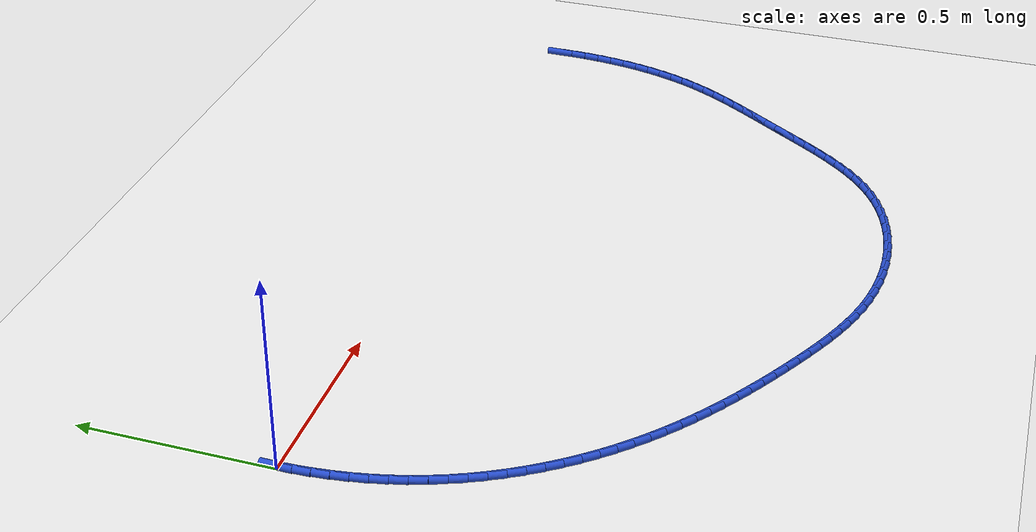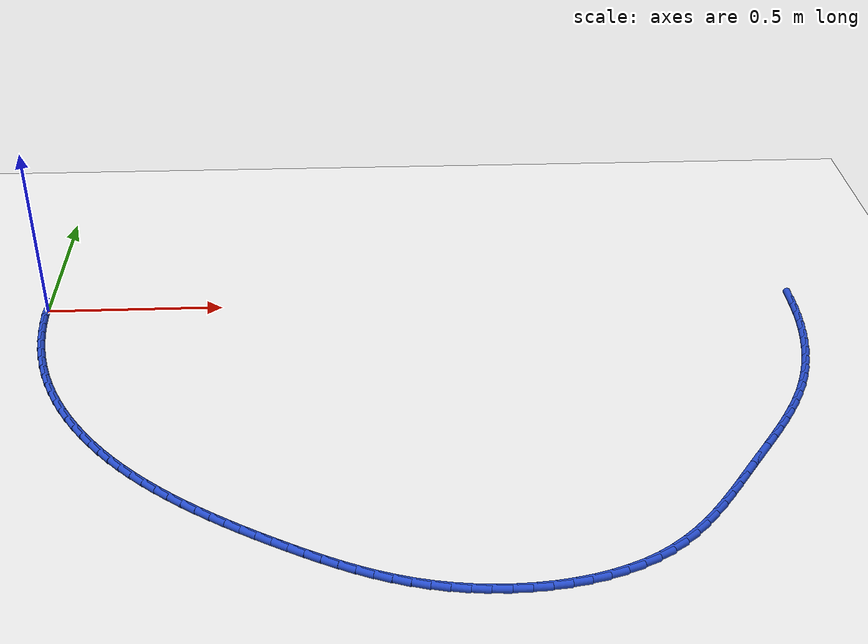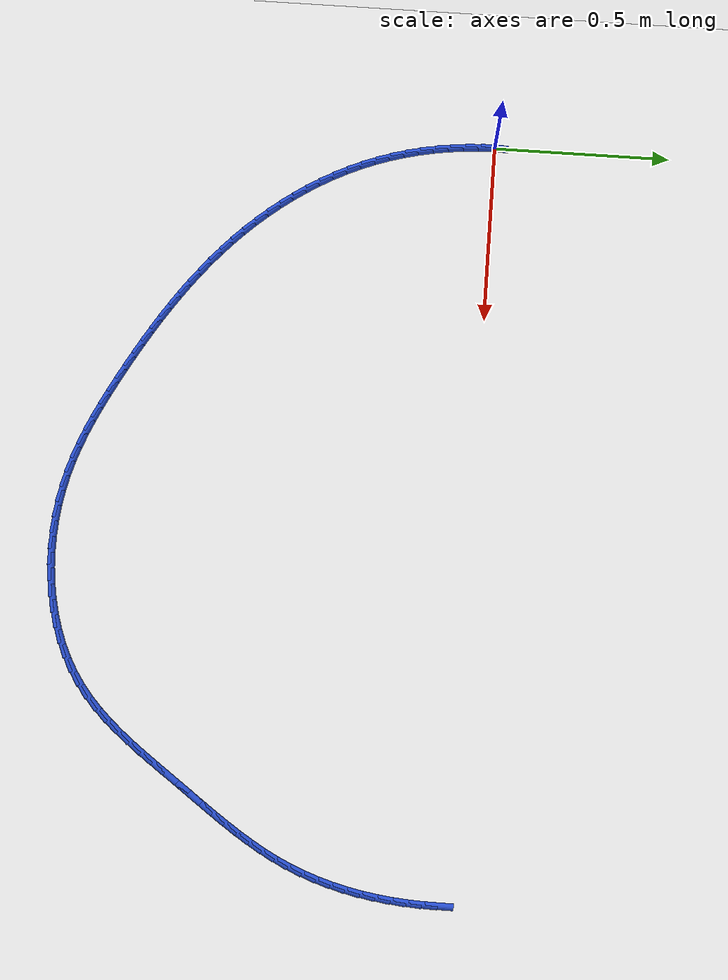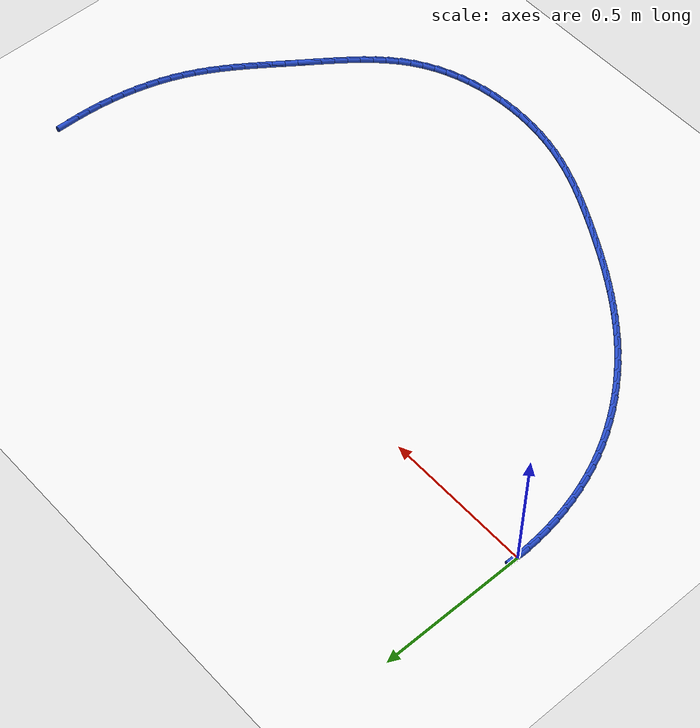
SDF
<sdf version="1.6">
 <world name="default">
  <model name="ground_plane">
   <static>1</static>
   <link name="link">
    <collision name="collision">
     <geometry><plane><normal>0 0 1</normal><size>100 100</size></plane></geometry>
     <surface><friction><ode><mu>100</mu><mu2>50</mu2></ode></friction></surface>
    </collision>
    <visual name="visual">
     <cast_shadows>0</cast_shadows>
     <geometry><plane><normal>0 0 1</normal><size>100 100</size></plane></geometry>
     <material>
      <script><uri>file://media/materials/scripts/gazebo.material</uri><name>Gazebo/WhiteGlow</name></script>
     </material>
    </visual>
   </link>
  </model>
  <model name="line">
   <link name="link_0">
    <pose>-1.5612511283791264e-17 -1.3877787807814457e-17 0.01 0 1.57 1.5550382018459732</pose>
    <collision name="collision">
     <geometry><cylinder><radius>0.01</radius><length>0.08</length></cylinder></geometry>
    </collision>
    <visual name="visual">
     <material>
      <script><name>Gazebo/Blue</name><uri>file://media/materials/scripts/gazebo.material</uri></script>
     </material>
     <geometry><cylinder><radius>0.01</radius><length>0.08</length></cylinder></geometry>
    </visual>
   </link>
   <link name="link_80">
    <pose>2.1539422164387503 -0.02940899779110692 0.01 0 1.57 1.5565943990553839</pose>
    <collision name="collision">
     <geometry><cylinder><radius>0.01</radius><length>0.08</length></cylinder></geometry>
    </collision>
    <visual name="visual">
     <material>
      <script><name>Gazebo/Blue</name><uri>file://media/materials/scripts/gazebo.material</uri></script>
     </material>
     <geometry><cylinder><radius>0.01</radius><length>0.08</length></cylinder></geometry>
    </visual>
   </link>
   <link name="link_81">
    <pose>2.153316064161116 -0.07349527898775675 0.01 0 1.57 1.5212279559447406</pose>
    <collision name="collision">
     <geometry><cylinder><radius>0.01</radius><length>0.08</length></cylinder></geometry>
    </collision>
    <visual name="visual">
     <material>
      <script><name>Gazebo/Blue</name><uri>file://media/materials/scripts/gazebo.material</uri></script>
     </material>
     <geometry><cylinder><radius>0.01</radius><length>0.08</length></cylinder></geometry>
    </visual>
   </link>
   <link name="link_82">
    <pose>2.1511389975417945 -0.11737978145065128 0.01 0 1.57 1.4844455310675044</pose>
    <collision name="collision">
     <geometry><cylinder><radius>0.01</radius><length>0.08</length></cylinder></geometry>
    </collision>
    <visual name="visual">
     <material>
      <script><name>Gazebo/Blue</name><uri>file://media/materials/scripts/gazebo.material</uri></script>
     </material>
     <geometry><cylinder><radius>0.01</radius><length>0.08</length></cylinder></geometry>
    </visual>
   </link>
   <link name="link_83">
    <pose>2.1473648537054677 -0.16097820523065665 0.01 0 1.57 1.446125235773089</pose>
    <collision name="collision">
     <geometry><cylinder><radius>0.01</radius><length>0.08</length></cylinder></geometry>
    </collision>
    <visual name="visual">
     <material>
      <script><name>Gazebo/Blue</name><uri>file://media/materials/scripts/gazebo.material</uri></script>
     </material>
     <geometry><cylinder><radius>0.01</radius><length>0.08</length></cylinder></geometry>
    </visual>
   </link>
   <link name="link_84">
    <pose>2.1419474697768175 -0.20420625037864135 0.01 0 1.57 1.406150575232681</pose>
    <collision name="collision">
     <geometry><cylinder><radius>0.01</radius><length>0.08</length></cylinder></geometry>
    </collision>
    <visual name="visual">
     <material>
      <script><name>Gazebo/Blue</name><uri>file://media/materials/scripts/gazebo.material</uri></script>
     </material>
     <geometry><cylinder><radius>0.01</radius><length>0.08</length></cylinder></geometry>
    </visual>
   </link>
   <link name="link_85">
    <pose>2.134840682880527 -0.24697961694547307 0.01 0 1.57 1.3644135216382514</pose>
    <collision name="collision">
     <geometry><cylinder><radius>0.01</radius><length>0.08</length></cylinder></geometry>
    </collision>
    <visual name="visual">
     <material>
      <script><name>Gazebo/Blue</name><uri>file://media/materials/scripts/gazebo.material</uri></script>
     </material>
     <geometry><cylinder><radius>0.01</radius><length>0.08</length></cylinder></geometry>
    </visual>
   </link>
   <link name="link_86">
    <pose>2.1259983301412784 -0.28921400498201955 0.01 0 1.57 1.3208184187432412</pose>
    <collision name="collision">
     <geometry><cylinder><radius>0.01</radius><length>0.08</length></cylinder></geometry>
    </collision>
    <visual name="visual">
     <material>
      <script><name>Gazebo/Blue</name><uri>file://media/materials/scripts/gazebo.material</uri></script>
     </material>
     <geometry><cylinder><radius>0.01</radius><length>0.08</length></cylinder></geometry>
    </visual>
   </link>
   <link name="link_87">
    <pose>2.115374248683754 -0.3308251145391491 0.01 0 1.57 1.2752867483530825</pose>
    <collision name="collision">
     <geometry><cylinder><radius>0.01</radius><length>0.08</length></cylinder></geometry>
    </collision>
    <visual name="visual">
     <material>
      <script><name>Gazebo/Blue</name><uri>file://media/materials/scripts/gazebo.material</uri></script>
     </material>
     <geometry><cylinder><radius>0.01</radius><length>0.08</length></cylinder></geometry>
    </visual>
   </link>
   <link name="link_88">
    <pose>2.1029222756326362 -0.3717286456677281 0.01 0 1.57 1.2277627186690123</pose>
    <collision name="collision">
     <geometry><cylinder><radius>0.01</radius><length>0.08</length></cylinder></geometry>
    </collision>
    <visual name="visual">
     <material>
      <script><name>Gazebo/Blue</name><uri>file://media/materials/scripts/gazebo.material</uri></script>
     </material>
     <geometry><cylinder><radius>0.01</radius><length>0.08</length></cylinder></geometry>
    </visual>
   </link>
   <link name="link_89">
    <pose>2.0885962481126077 -0.4118402984186248 0.01 0 1.57 1.178219529047844</pose>
    <collision name="collision">
     <geometry><cylinder><radius>0.01</radius><length>0.08</length></cylinder></geometry>
    </collision>
    <visual name="visual">
     <material>
      <script><name>Gazebo/Blue</name><uri>file://media/materials/scripts/gazebo.material</uri></script>
     </material>
     <geometry><cylinder><radius>0.01</radius><length>0.08</length></cylinder></geometry>
    </visual>
   </link>
   <link name="link_90">
    <pose>2.07235000324835 -0.45107577284270717 0.01 0 1.57 1.126972777378681</pose>
    <collision name="collision">
     <geometry><cylinder><radius>0.01</radius><length>0.08</length></cylinder></geometry>
    </collision>
    <visual name="visual">
     <material>
      <script><name>Gazebo/Blue</name><uri>file://media/materials/scripts/gazebo.material</uri></script>
     </material>
     <geometry><cylinder><radius>0.01</radius><length>0.08</length></cylinder></geometry>
    </visual>
   </link>
   <link name="link_91">
    <pose>2.054147837860722 -0.4893590505294075 0.01 0 1.57 1.0787356138030832</pose>
    <collision name="collision">
     <geometry><cylinder><radius>0.01</radius><length>0.08</length></cylinder></geometry>
    </collision>
    <visual name="visual">
     <material>
      <script><name>Gazebo/Blue</name><uri>file://media/materials/scripts/gazebo.material</uri></script>
     </material>
     <geometry><cylinder><radius>0.01</radius><length>0.08</length></cylinder></geometry>
    </visual>
   </link>
   <link name="link_92">
    <pose>2.0341110664331055 -0.5267384329151077 0.01 0 1.57 1.0372902091825713</pose>
    <collision name="collision">
     <geometry><cylinder><radius>0.01</radius><length>0.08</length></cylinder></geometry>
    </collision>
    <visual name="visual">
     <material>
      <script><name>Gazebo/Blue</name><uri>file://media/materials/scripts/gazebo.material</uri></script>
     </material>
     <geometry><cylinder><radius>0.01</radius><length>0.08</length></cylinder></geometry>
    </visual>
   </link>
   <link name="link_93">
    <pose>2.01248213712991 -0.563358129886504 0.01 0 1.57 1.0028394556459574</pose>
    <collision name="collision">
     <geometry><cylinder><radius>0.01</radius><length>0.08</length></cylinder></geometry>
    </collision>
    <visual name="visual">
     <material>
      <script><name>Gazebo/Blue</name><uri>file://media/materials/scripts/gazebo.material</uri></script>
     </material>
     <geometry><cylinder><radius>0.01</radius><length>0.08</length></cylinder></geometry>
    </visual>
   </link>
   <link name="link_94">
    <pose>1.9895066292175947 -0.599364830402532 0.01 0 1.57 0.9753718487942138</pose>
    <collision name="collision">
     <geometry><cylinder><radius>0.01</radius><length>0.08</length></cylinder></geometry>
    </collision>
    <visual name="visual">
     <material>
      <script><name>Gazebo/Blue</name><uri>file://media/materials/scripts/gazebo.material</uri></script>
     </material>
     <geometry><cylinder><radius>0.01</radius><length>0.08</length></cylinder></geometry>
    </visual>
   </link>
   <link name="link_95">
    <pose>1.9654301219626213 -0.6349052234221266 0.01 0 1.57 0.9548042492435083</pose>
    <collision name="collision">
     <geometry><cylinder><radius>0.01</radius><length>0.08</length></cylinder></geometry>
    </collision>
    <visual name="visual">
     <material>
      <script><name>Gazebo/Blue</name><uri>file://media/materials/scripts/gazebo.material</uri></script>
     </material>
     <geometry><cylinder><radius>0.01</radius><length>0.08</length></cylinder></geometry>
    </visual>
   </link>
   <link name="link_96">
    <pose>1.9404981946314488 -0.6701259979042231 0.01 0 1.57 0.9410223682051668</pose>
    <collision name="collision">
     <geometry><cylinder><radius>0.01</radius><length>0.08</length></cylinder></geometry>
    </collision>
    <visual name="visual">
     <material>
      <script><name>Gazebo/Blue</name><uri>file://media/materials/scripts/gazebo.material</uri></script>
     </material>
     <geometry><cylinder><radius>0.01</radius><length>0.08</length></cylinder></geometry>
    </visual>
   </link>
   <link name="link_97">
    <pose>1.9149564264905399 -0.705173842807756 0.01 0 1.57 0.9339097418655374</pose>
    <collision name="collision">
     <geometry><cylinder><radius>0.01</radius><length>0.08</length></cylinder></geometry>
    </collision>
    <visual name="visual">
     <material>
      <script><name>Gazebo/Blue</name><uri>file://media/materials/scripts/gazebo.material</uri></script>
     </material>
     <geometry><cylinder><radius>0.01</radius><length>0.08</length></cylinder></geometry>
    </visual>
   </link>
   <link name="link_98">
    <pose>1.8890503968063523 -0.7401954470916596 0.01 0 1.57 0.9333658339766633</pose>
    <collision name="collision">
     <geometry><cylinder><radius>0.01</radius><length>0.08</length></cylinder></geometry>
    </collision>
    <visual name="visual">
     <material>
      <script><name>Gazebo/Blue</name><uri>file://media/materials/scripts/gazebo.material</uri></script>
     </material>
     <geometry><cylinder><radius>0.01</radius><length>0.08</length></cylinder></geometry>
    </visual>
   </link>
   <link name="link_99">
    <pose>1.8630256848453486 -0.7753374997148699 0.01 0 1.57 0.938059829917183</pose>
    <collision name="collision">
     <geometry><cylinder><radius>0.01</radius><length>0.08</length></cylinder></geometry>
    </collision>
    <visual name="visual">
     <material>
      <script><name>Gazebo/Blue</name><uri>file://media/materials/scripts/gazebo.material</uri></script>
     </material>
     <geometry><cylinder><radius>0.01</radius><length>0.08</length></cylinder></geometry>
    </visual>
   </link>
   <link name="link_100">
    <pose>1.837087975409446 -0.8107080186126946 0.01 0 1.57 0.9380481611316303</pose>
    <collision name="collision">
     <geometry><cylinder><radius>0.01</radius><length>0.08</length></cylinder></geometry>
    </collision>
    <visual name="visual">
     <material>
      <script><name>Gazebo/Blue</name><uri>file://media/materials/scripts/gazebo.material</uri></script>
     </material>
     <geometry><cylinder><radius>0.01</radius><length>0.08</length></cylinder></geometry>
    </visual>
   </link>
   <link name="link_101">
    <pose>1.8111272746138838 -0.8461090239312467 0.01 0 1.57 0.9286147634766178</pose>
    <collision name="collision">
     <geometry><cylinder><radius>0.01</radius><length>0.08</length></cylinder></geometry>
    </collision>
    <visual name="visual">
     <material>
      <script><name>Gazebo/Blue</name><uri>file://media/materials/scripts/gazebo.material</uri></script>
     </material>
     <geometry><cylinder><radius>0.01</radius><length>0.08</length></cylinder></geometry>
    </visual>
   </link>
   <link name="link_102">
    <pose>1.784883516066078 -0.881197065572522 0.01 0 1.57 0.909602461871048</pose>
    <collision name="collision">
     <geometry><cylinder><radius>0.01</radius><length>0.08</length></cylinder></geometry>
    </collision>
    <visual name="visual">
     <material>
      <script><name>Gazebo/Blue</name><uri>file://media/materials/scripts/gazebo.material</uri></script>
     </material>
     <geometry><cylinder><radius>0.01</radius><length>0.08</length></cylinder></geometry>
    </visual>
   </link>
   <link name="link_103">
    <pose>1.7580957207706256 -0.9156278088224296 0.01 0 1.57 0.8807507866250059</pose>
    <collision name="collision">
     <geometry><cylinder><radius>0.01</radius><length>0.08</length></cylinder></geometry>
    </collision>
    <visual name="visual">
     <material>
      <script><name>Gazebo/Blue</name><uri>file://media/materials/scripts/gazebo.material</uri></script>
     </material>
     <geometry><cylinder><radius>0.01</radius><length>0.08</length></cylinder></geometry>
    </visual>
   </link>
   <link name="link_104">
    <pose>1.730502909732122 -0.949056918966878 0.01 0 1.57 0.8417137058338278</pose>
    <collision name="collision">
     <geometry><cylinder><radius>0.01</radius><length>0.08</length></cylinder></geometry>
    </collision>
    <visual name="visual">
     <material>
      <script><name>Gazebo/Blue</name><uri>file://media/materials/scripts/gazebo.material</uri></script>
     </material>
     <geometry><cylinder><radius>0.01</radius><length>0.08</length></cylinder></geometry>
    </visual>
   </link>
   <link name="link_105">
    <pose>1.7018441039551653 -0.9811400612917767 0.01 0 1.57 0.7921398563694119</pose>
    <collision name="collision">
     <geometry><cylinder><radius>0.01</radius><length>0.08</length></cylinder></geometry>
    </collision>
    <visual name="visual">
     <material>
      <script><name>Gazebo/Blue</name><uri>file://media/materials/scripts/gazebo.material</uri></script>
     </material>
     <geometry><cylinder><radius>0.01</radius><length>0.08</length></cylinder></geometry>
    </visual>
   </link>
   <link name="link_106">
    <pose>1.6718583244443521 -1.011532901083035 0.01 0 1.57 0.731796530682206</pose>
    <collision name="collision">
     <geometry><cylinder><radius>0.01</radius><length>0.08</length></cylinder></geometry>
    </collision>
    <visual name="visual">
     <material>
      <script><name>Gazebo/Blue</name><uri>file://media/materials/scripts/gazebo.material</uri></script>
     </material>
     <geometry><cylinder><radius>0.01</radius><length>0.08</length></cylinder></geometry>
    </visual>
   </link>
   <link name="link_107">
    <pose>1.6402845922042792 -1.039891103626561 0.01 0 1.57 0.6607415632924256</pose>
    <collision name="collision">
     <geometry><cylinder><radius>0.01</radius><length>0.08</length></cylinder></geometry>
    </collision>
    <visual name="visual">
     <material>
      <script><name>Gazebo/Blue</name><uri>file://media/materials/scripts/gazebo.material</uri></script>
     </material>
     <geometry><cylinder><radius>0.01</radius><length>0.08</length></cylinder></geometry>
    </visual>
   </link>
   <link name="link_108">
    <pose>1.6068619282395435 -1.0658703342082636 0.01 0 1.57 0.5801091418839455</pose>
    <collision name="collision">
     <geometry><cylinder><radius>0.01</radius><length>0.08</length></cylinder></geometry>
    </collision>
    <visual name="visual">
     <material>
      <script><name>Gazebo/Blue</name><uri>file://media/materials/scripts/gazebo.material</uri></script>
     </material>
     <geometry><cylinder><radius>0.01</radius><length>0.08</length></cylinder></geometry>
    </visual>
   </link>
   <link name="link_109">
    <pose>1.5713502826342214 -1.0891419838503946 0.01 0 1.57 0.49858560673774277</pose>
    <collision name="collision">
     <geometry><cylinder><radius>0.01</radius><length>0.08</length></cylinder></geometry>
    </collision>
    <visual name="visual">
     <material>
      <script><name>Gazebo/Blue</name><uri>file://media/materials/scripts/gazebo.material</uri></script>
     </material>
     <geometry><cylinder><radius>0.01</radius><length>0.08</length></cylinder></geometry>
    </visual>
   </link>
   <link name="link_110">
    <pose>1.5337932457419596 -1.1095905658054388 0.01 0 1.57 0.4218780130183422</pose>
    <collision name="collision">
     <geometry><cylinder><radius>0.01</radius><length>0.08</length></cylinder></geometry>
    </collision>
    <visual name="visual">
     <material>
      <script><name>Gazebo/Blue</name><uri>file://media/materials/scripts/gazebo.material</uri></script>
     </material>
     <geometry><cylinder><radius>0.01</radius><length>0.08</length></cylinder></geometry>
    </visual>
   </link>
   <link name="link_111">
    <pose>1.4944385774743585 -1.1272540026834565 0.01 0 1.57 0.34978227985794885</pose>
    <collision name="collision">
     <geometry><cylinder><radius>0.01</radius><length>0.08</length></cylinder></geometry>
    </collision>
    <visual name="visual">
     <material>
      <script><name>Gazebo/Blue</name><uri>file://media/materials/scripts/gazebo.material</uri></script>
     </material>
     <geometry><cylinder><radius>0.01</radius><length>0.08</length></cylinder></geometry>
    </visual>
   </link>
   <link name="link_112">
    <pose>1.453538532213449 -1.1421735941592743 0.01 0 1.57 0.2818425871183967</pose>
    <collision name="collision">
     <geometry><cylinder><radius>0.01</radius><length>0.08</length></cylinder></geometry>
    </collision>
    <visual name="visual">
     <material>
      <script><name>Gazebo/Blue</name><uri>file://media/materials/scripts/gazebo.material</uri></script>
     </material>
     <geometry><cylinder><radius>0.01</radius><length>0.08</length></cylinder></geometry>
    </visual>
   </link>
   <link name="link_113">
    <pose>1.4113453643412568 -1.1543906399077188 0.01 0 1.57 0.21752770559563295</pose>
    <collision name="collision">
     <geometry><cylinder><radius>0.01</radius><length>0.08</length></cylinder></geometry>
    </collision>
    <visual name="visual">
     <material>
      <script><name>Gazebo/Blue</name><uri>file://media/materials/scripts/gazebo.material</uri></script>
     </material>
     <geometry><cylinder><radius>0.01</radius><length>0.08</length></cylinder></geometry>
    </visual>
   </link>
   <link name="link_114">
    <pose>1.3681113282398107 -1.1639464396036179 0.01 0 1.57 0.1562673878199026</pose>
    <collision name="collision">
     <geometry><cylinder><radius>0.01</radius><length>0.08</length></cylinder></geometry>
    </collision>
    <visual name="visual">
     <material>
      <script><name>Gazebo/Blue</name><uri>file://media/materials/scripts/gazebo.material</uri></script>
     </material>
     <geometry><cylinder><radius>0.01</radius><length>0.08</length></cylinder></geometry>
    </visual>
   </link>
   <link name="link_115">
    <pose>1.3240886782911374 -1.170882292921798 0.01 0 1.57 0.09747519188696391</pose>
    <collision name="collision">
     <geometry><cylinder><radius>0.01</radius><length>0.08</length></cylinder></geometry>
    </collision>
    <visual name="visual">
     <material>
      <script><name>Gazebo/Blue</name><uri>file://media/materials/scripts/gazebo.material</uri></script>
     </material>
     <geometry><cylinder><radius>0.01</radius><length>0.08</length></cylinder></geometry>
    </visual>
   </link>
   <link name="link_116">
    <pose>1.279529668877265 -1.1752394995370865 0.01 0 1.57 0.04056055232526023</pose>
    <collision name="collision">
     <geometry><cylinder><radius>0.01</radius><length>0.08</length></cylinder></geometry>
    </collision>
    <visual name="visual">
     <material>
      <script><name>Gazebo/Blue</name><uri>file://media/materials/scripts/gazebo.material</uri></script>
     </material>
     <geometry><cylinder><radius>0.01</radius><length>0.08</length></cylinder></geometry>
    </visual>
   </link>
   <link name="link_117">
    <pose>1.2346865543802223 -1.1770593591243101 0.01 0 1.57 -0.015067122465307161</pose>
    <collision name="collision">
     <geometry><cylinder><radius>0.01</radius><length>0.08</length></cylinder></geometry>
    </collision>
    <visual name="visual">
     <material>
      <script><name>Gazebo/Blue</name><uri>file://media/materials/scripts/gazebo.material</uri></script>
     </material>
     <geometry><cylinder><radius>0.01</radius><length>0.08</length></cylinder></geometry>
    </visual>
   </link>
   <link name="link_118">
    <pose>1.1898115891820369 -1.1763831713582964 0.01 0 1.57 -0.07000001351940568</pose>
    <collision name="collision">
     <geometry><cylinder><radius>0.01</radius><length>0.08</length></cylinder></geometry>
    </collision>
    <visual name="visual">
     <material>
      <script><name>Gazebo/Blue</name><uri>file://media/materials/scripts/gazebo.material</uri></script>
     </material>
     <geometry><cylinder><radius>0.01</radius><length>0.08</length></cylinder></geometry>
    </visual>
   </link>
   <link name="link_119">
    <pose>1.145157027664736 -1.1732522359138717 0.01 0 1.57 -0.12483734636805593</pose>
    <collision name="collision">
     <geometry><cylinder><radius>0.01</radius><length>0.08</length></cylinder></geometry>
    </collision>
    <visual name="visual">
     <material>
      <script><name>Gazebo/Blue</name><uri>file://media/materials/scripts/gazebo.material</uri></script>
     </material>
     <geometry><cylinder><radius>0.01</radius><length>0.08</length></cylinder></geometry>
    </visual>
   </link>
   <link name="link_120">
    <pose>1.100975124210348 -1.1677078524658633 0.01 0 1.57 -0.18019340893893562</pose>
    <collision name="collision">
     <geometry><cylinder><radius>0.01</radius><length>0.08</length></cylinder></geometry>
    </collision>
    <visual name="visual">
     <material>
      <script><name>Gazebo/Blue</name><uri>file://media/materials/scripts/gazebo.material</uri></script>
     </material>
     <geometry><cylinder><radius>0.01</radius><length>0.08</length></cylinder></geometry>
    </visual>
   </link>
   <link name="link_121">
    <pose>1.0575181332008994 -1.159791320689098 0.01 0 1.57 -0.23642684077281614</pose>
    <collision name="collision">
     <geometry><cylinder><radius>0.01</radius><length>0.08</length></cylinder></geometry>
    </collision>
    <visual name="visual">
     <material>
      <script><name>Gazebo/Blue</name><uri>file://media/materials/scripts/gazebo.material</uri></script>
     </material>
     <geometry><cylinder><radius>0.01</radius><length>0.08</length></cylinder></geometry>
    </visual>
   </link>
   <link name="link_122">
    <pose>1.0150219608230429 -1.1495525966421423 0.01 0 1.57 -0.2903714450896837</pose>
    <collision name="collision">
     <geometry><cylinder><radius>0.01</radius><length>0.08</length></cylinder></geometry>
    </collision>
    <visual name="visual">
     <material>
      <script><name>Gazebo/Blue</name><uri>file://media/materials/scripts/gazebo.material</uri></script>
     </material>
     <geometry><cylinder><radius>0.01</radius><length>0.08</length></cylinder></geometry>
    </visual>
   </link>
   <link name="link_123">
    <pose>0.973517316008744 -1.1371502885092457 0.01 0 1.57 -0.33920230906633153</pose>
    <collision name="collision">
     <geometry><cylinder><radius>0.01</radius><length>0.08</length></cylinder></geometry>
    </collision>
    <visual name="visual">
     <material>
      <script><name>Gazebo/Blue</name><uri>file://media/materials/scripts/gazebo.material</uri></script>
     </material>
     <geometry><cylinder><radius>0.01</radius><length>0.08</length></cylinder></geometry>
    </visual>
   </link>
   <link name="link_124">
    <pose>0.9328949546263744 -1.1228171097441382 0.01 0 1.57 -0.38243227640335964</pose>
    <collision name="collision">
     <geometry><cylinder><radius>0.01</radius><length>0.08</length></cylinder></geometry>
    </collision>
    <visual name="visual">
     <material>
      <script><name>Gazebo/Blue</name><uri>file://media/materials/scripts/gazebo.material</uri></script>
     </material>
     <geometry><cylinder><radius>0.01</radius><length>0.08</length></cylinder></geometry>
    </visual>
   </link>
   <link name="link_125">
    <pose>0.8930429351510171 -1.1067872020726555 0.01 0 1.57 -0.41978088795872825</pose>
    <collision name="collision">
     <geometry><cylinder><radius>0.01</radius><length>0.08</length></cylinder></geometry>
    </collision>
    <visual name="visual">
     <material>
      <script><name>Gazebo/Blue</name><uri>file://media/materials/scripts/gazebo.material</uri></script>
     </material>
     <geometry><cylinder><radius>0.01</radius><length>0.08</length></cylinder></geometry>
    </visual>
   </link>
   <link name="link_126">
    <pose>0.8538493160577545 -1.0892947072206318 0.01 0 1.57 -0.45109526773352976</pose>
    <collision name="collision">
     <geometry><cylinder><radius>0.01</radius><length>0.08</length></cylinder></geometry>
    </collision>
    <visual name="visual">
     <material>
      <script><name>Gazebo/Blue</name><uri>file://media/materials/scripts/gazebo.material</uri></script>
     </material>
     <geometry><cylinder><radius>0.01</radius><length>0.08</length></cylinder></geometry>
    </visual>
   </link>
   <link name="link_127">
    <pose>0.8152021558216704 -1.0705737669139022 0.01 0 1.57 -0.47631427556176587</pose>
    <collision name="collision">
     <geometry><cylinder><radius>0.01</radius><length>0.08</length></cylinder></geometry>
    </collision>
    <visual name="visual">
     <material>
      <script><name>Gazebo/Blue</name><uri>file://media/materials/scripts/gazebo.material</uri></script>
     </material>
     <geometry><cylinder><radius>0.01</radius><length>0.08</length></cylinder></geometry>
    </visual>
   </link>
   <link name="link_128">
    <pose>0.7769895129178471 -1.0508585228783016 0.01 0 1.57 -0.4954350157832852</pose>
    <collision name="collision">
     <geometry><cylinder><radius>0.01</radius><length>0.08</length></cylinder></geometry>
    </collision>
    <visual name="visual">
     <material>
      <script><name>Gazebo/Blue</name><uri>file://media/materials/scripts/gazebo.material</uri></script>
     </material>
     <geometry><cylinder><radius>0.01</radius><length>0.08</length></cylinder></geometry>
    </visual>
   </link>
   <link name="link_129">
    <pose>0.7390994458213677 -1.030383116839665 0.01 0 1.57 -0.5090507570775925</pose>
    <collision name="collision">
     <geometry><cylinder><radius>0.01</radius><length>0.08</length></cylinder></geometry>
    </collision>
    <visual name="visual">
     <material>
      <script><name>Gazebo/Blue</name><uri>file://media/materials/scripts/gazebo.material</uri></script>
     </material>
     <geometry><cylinder><radius>0.01</radius><length>0.08</length></cylinder></geometry>
    </visual>
   </link>
   <link name="link_130">
    <pose>0.7014330530904215 -1.0093610084017068 0.01 0 1.57 -0.5220389578316589</pose>
    <collision name="collision">
     <geometry><cylinder><radius>0.01</radius><length>0.08</length></cylinder></geometry>
    </collision>
    <visual name="visual">
     <material>
      <script><name>Gazebo/Blue</name><uri>file://media/materials/scripts/gazebo.material</uri></script>
     </material>
     <geometry><cylinder><radius>0.01</radius><length>0.08</length></cylinder></geometry>
    </visual>
   </link>
   <link name="link_131">
    <pose>0.6640030809856783 -0.9878285792002847 0.01 0 1.57 -0.536883725411235</pose>
    <collision name="collision">
     <geometry><cylinder><radius>0.01</radius><length>0.08</length></cylinder></geometry>
    </collision>
    <visual name="visual">
     <material>
      <script><name>Gazebo/Blue</name><uri>file://media/materials/scripts/gazebo.material</uri></script>
     </material>
     <geometry><cylinder><radius>0.01</radius><length>0.08</length></cylinder></geometry>
    </visual>
   </link>
   <link name="link_132">
    <pose>0.6268789878773617 -0.965732263072164 0.01 0 1.57 -0.5536289458548418</pose>
    <collision name="collision">
     <geometry><cylinder><radius>0.01</radius><length>0.08</length></cylinder></geometry>
    </collision>
    <visual name="visual">
     <material>
      <script><name>Gazebo/Blue</name><uri>file://media/materials/scripts/gazebo.material</uri></script>
     </material>
     <geometry><cylinder><radius>0.01</radius><length>0.08</length></cylinder></geometry>
    </visual>
   </link>
   <link name="link_133">
    <pose>0.5901306782010814 -0.9430177863755771 0.01 0 1.57 -0.5723019127983296</pose>
    <collision name="collision">
     <geometry><cylinder><radius>0.01</radius><length>0.08</length></cylinder></geometry>
    </collision>
    <visual name="visual">
     <material>
      <script><name>Gazebo/Blue</name><uri>file://media/materials/scripts/gazebo.material</uri></script>
     </material>
     <geometry><cylinder><radius>0.01</radius><length>0.08</length></cylinder></geometry>
    </visual>
   </link>
   <link name="link_134">
    <pose>0.5538280563924484 -0.9196308754687571 0.01 0 1.57 -0.5929309363932004</pose>
    <collision name="collision">
     <geometry><cylinder><radius>0.01</radius><length>0.08</length></cylinder></geometry>
    </collision>
    <visual name="visual">
     <material>
      <script><name>Gazebo/Blue</name><uri>file://media/materials/scripts/gazebo.material</uri></script>
     </material>
     <geometry><cylinder><radius>0.01</radius><length>0.08</length></cylinder></geometry>
    </visual>
   </link>
   <link name="link_135">
    <pose>0.5180410268870729 -0.8955172567099372 0.01 0 1.57 -0.6155432963229088</pose>
    <collision name="collision">
     <geometry><cylinder><radius>0.01</radius><length>0.08</length></cylinder></geometry>
    </collision>
    <visual name="visual">
     <material>
      <script><name>Gazebo/Blue</name><uri>file://media/materials/scripts/gazebo.material</uri></script>
     </material>
     <geometry><cylinder><radius>0.01</radius><length>0.08</length></cylinder></geometry>
    </visual>
   </link>
   <link name="link_136">
    <pose>0.4828394941205652 -0.8706226564573497 0.01 0 1.57 -0.640162868132885</pose>
    <collision name="collision">
     <geometry><cylinder><radius>0.01</radius><length>0.08</length></cylinder></geometry>
    </collision>
    <visual name="visual">
     <material>
      <script><name>Gazebo/Blue</name><uri>file://media/materials/scripts/gazebo.material</uri></script>
     </material>
     <geometry><cylinder><radius>0.01</radius><length>0.08</length></cylinder></geometry>
    </visual>
   </link>
   <link name="link_137">
    <pose>0.44829336252853685 -0.8448928010692286 0.01 0 1.57 -0.6668074056548615</pose>
    <collision name="collision">
     <geometry><cylinder><radius>0.01</radius><length>0.08</length></cylinder></geometry>
    </collision>
    <visual name="visual">
     <material>
      <script><name>Gazebo/Blue</name><uri>file://media/materials/scripts/gazebo.material</uri></script>
     </material>
     <geometry><cylinder><radius>0.01</radius><length>0.08</length></cylinder></geometry>
    </visual>
   </link>
   <link name="link_138">
    <pose>0.41447253654659816 -0.8182734169038067 0.01 0 1.57 -0.6954854859374147</pose>
    <collision name="collision">
     <geometry><cylinder><radius>0.01</radius><length>0.08</length></cylinder></geometry>
    </collision>
    <visual name="visual">
     <material>
      <script><name>Gazebo/Blue</name><uri>file://media/materials/scripts/gazebo.material</uri></script>
     </material>
     <geometry><cylinder><radius>0.01</radius><length>0.08</length></cylinder></geometry>
    </visual>
   </link>
   <link name="link_139">
    <pose>0.3814469206103595 -0.7907102303193164 0.01 0 1.57 -0.7261931569248367</pose>
    <collision name="collision">
     <geometry><cylinder><radius>0.01</radius><length>0.08</length></cylinder></geometry>
    </collision>
    <visual name="visual">
     <material>
      <script><name>Gazebo/Blue</name><uri>file://media/materials/scripts/gazebo.material</uri></script>
     </material>
     <geometry><cylinder><radius>0.01</radius><length>0.08</length></cylinder></geometry>
    </visual>
   </link>
   <link name="link_140">
    <pose>0.34928641915543157 -0.7621489676739918 0.01 0 1.57 -0.7589103727569183</pose>
    <collision name="collision">
     <geometry><cylinder><radius>0.01</radius><length>0.08</length></cylinder></geometry>
    </collision>
    <visual name="visual">
     <material>
      <script><name>Gazebo/Blue</name><uri>file://media/materials/scripts/gazebo.material</uri></script>
     </material>
     <geometry><cylinder><radius>0.01</radius><length>0.08</length></cylinder></geometry>
    </visual>
   </link>
   <link name="link_141">
    <pose>0.3180609366174244 -0.7325353553260645 0.01 0 1.57 -0.7935962641691003</pose>
    <collision name="collision">
     <geometry><cylinder><radius>0.01</radius><length>0.08</length></cylinder></geometry>
    </collision>
    <visual name="visual">
     <material>
      <script><name>Gazebo/Blue</name><uri>file://media/materials/scripts/gazebo.material</uri></script>
     </material>
     <geometry><cylinder><radius>0.01</radius><length>0.08</length></cylinder></geometry>
    </visual>
   </link>
   <link name="link_142">
    <pose>0.2878403907475585 -0.7018152002560271 0.01 0 1.57 -0.8298537381101357</pose>
    <collision name="collision">
     <geometry><cylinder><radius>0.01</radius><length>0.08</length></cylinder></geometry>
    </collision>
    <visual name="visual">
     <material>
      <script><name>Gazebo/Blue</name><uri>file://media/materials/scripts/gazebo.material</uri></script>
     </material>
     <geometry><cylinder><radius>0.01</radius><length>0.08</length></cylinder></geometry>
    </visual>
   </link>
   <link name="link_143">
    <pose>0.258699010501696 -0.6699604125734041 0.01 0 1.57 -0.8668917716151607</pose>
    <collision name="collision">
     <geometry><cylinder><radius>0.01</radius><length>0.08</length></cylinder></geometry>
    </collision>
    <visual name="visual">
     <material>
      <script><name>Gazebo/Blue</name><uri>file://media/materials/scripts/gazebo.material</uri></script>
     </material>
     <geometry><cylinder><radius>0.01</radius><length>0.08</length></cylinder></geometry>
    </visual>
   </link>
   <link name="link_144">
    <pose>0.23072150406305272 -0.6370063511558495 0.01 0 1.57 -0.9047110724543185</pose>
    <collision name="collision">
     <geometry><cylinder><radius>0.01</radius><length>0.08</length></cylinder></geometry>
    </collision>
    <visual name="visual">
     <material>
      <script><name>Gazebo/Blue</name><uri>file://media/materials/scripts/gazebo.material</uri></script>
     </material>
     <geometry><cylinder><radius>0.01</radius><length>0.08</length></cylinder></geometry>
    </visual>
   </link>
   <link name="link_145">
    <pose>0.20399414122696802 -0.6029978300022966 0.01 0 1.57 -0.9434361296710982</pose>
    <collision name="collision">
     <geometry><cylinder><radius>0.01</radius><length>0.08</length></cylinder></geometry>
    </collision>
    <visual name="visual">
     <material>
      <script><name>Gazebo/Blue</name><uri>file://media/materials/scripts/gazebo.material</uri></script>
     </material>
     <geometry><cylinder><radius>0.01</radius><length>0.08</length></cylinder></geometry>
    </visual>
   </link>
   <link name="link_146">
    <pose>0.17860319178878092 -0.5679796631116781 0.01 0 1.57 -0.9831863095261434</pose>
    <collision name="collision">
     <geometry><cylinder><radius>0.01</radius><length>0.08</length></cylinder></geometry>
    </collision>
    <visual name="visual">
     <material>
      <script><name>Gazebo/Blue</name><uri>file://media/materials/scripts/gazebo.material</uri></script>
     </material>
     <geometry><cylinder><radius>0.01</radius><length>0.08</length></cylinder></geometry>
    </visual>
   </link>
   <link name="link_147">
    <pose>0.15463492554383168 -0.5319966644829291 0.01 0 1.57 -1.024074563167116</pose>
    <collision name="collision">
     <geometry><cylinder><radius>0.01</radius><length>0.08</length></cylinder></geometry>
    </collision>
    <visual name="visual">
     <material>
      <script><name>Gazebo/Blue</name><uri>file://media/materials/scripts/gazebo.material</uri></script>
     </material>
     <geometry><cylinder><radius>0.01</radius><length>0.08</length></cylinder></geometry>
    </visual>
   </link>
   <link name="link_148">
    <pose>0.1321756122874592 -0.4950936481149819 0.01 0 1.57 -1.0662056384697898</pose>
    <collision name="collision">
     <geometry><cylinder><radius>0.01</radius><length>0.08</length></cylinder></geometry>
    </collision>
    <visual name="visual">
     <material>
      <script><name>Gazebo/Blue</name><uri>file://media/materials/scripts/gazebo.material</uri></script>
     </material>
     <geometry><cylinder><radius>0.01</radius><length>0.08</length></cylinder></geometry>
    </visual>
   </link>
   <link name="link_149">
    <pose>0.11131152181500296 -0.4573154280067702 0.01 0 1.57 -1.1096737593543151</pose>
    <collision name="collision">
     <geometry><cylinder><radius>0.01</radius><length>0.08</length></cylinder></geometry>
    </collision>
    <visual name="visual">
     <material>
      <script><name>Gazebo/Blue</name><uri>file://media/materials/scripts/gazebo.material</uri></script>
     </material>
     <geometry><cylinder><radius>0.01</radius><length>0.08</length></cylinder></geometry>
    </visual>
   </link>
   <link name="link_150">
    <pose>0.09212892392180232 -0.4187068181572275 0.01 0 1.57 -1.1545595291869868</pose>
    <collision name="collision">
     <geometry><cylinder><radius>0.01</radius><length>0.08</length></cylinder></geometry>
    </collision>
    <visual name="visual">
     <material>
      <script><name>Gazebo/Blue</name><uri>file://media/materials/scripts/gazebo.material</uri></script>
     </material>
     <geometry><cylinder><radius>0.01</radius><length>0.08</length></cylinder></geometry>
    </visual>
   </link>
   <link name="link_151">
    <pose>0.07471407882867183 -0.3793126351628196 0.01 0 1.57 -1.2004484262520667</pose>
    <collision name="collision">
     <geometry><cylinder><radius>0.01</radius><length>0.08</length></cylinder></geometry>
    </collision>
    <visual name="visual">
     <material>
      <script><name>Gazebo/Blue</name><uri>file://media/materials/scripts/gazebo.material</uri></script>
     </material>
     <geometry><cylinder><radius>0.01</radius><length>0.08</length></cylinder></geometry>
    </visual>
   </link>
   <link name="link_152">
    <pose>0.0591332544672378 -0.3391831194547338 0.01 0 1.57 -1.2458858316458354</pose>
    <collision name="collision">
     <geometry><cylinder><radius>0.01</radius><length>0.08</length></cylinder></geometry>
    </collision>
    <visual name="visual">
     <material>
      <script><name>Gazebo/Blue</name><uri>file://media/materials/scripts/gazebo.material</uri></script>
     </material>
     <geometry><cylinder><radius>0.01</radius><length>0.08</length></cylinder></geometry>
    </visual>
   </link>
   <link name="link_153">
    <pose>0.04539060768333605 -0.2983853619738855 0.01 0 1.57 -1.2905990551800772</pose>
    <collision name="collision">
     <geometry><cylinder><radius>0.01</radius><length>0.08</length></cylinder></geometry>
    </collision>
    <visual name="visual">
     <material>
      <script><name>Gazebo/Blue</name><uri>file://media/materials/scripts/gazebo.material</uri></script>
     </material>
     <geometry><cylinder><radius>0.01</radius><length>0.08</length></cylinder></geometry>
    </visual>
   </link>
   <link name="link_154">
    <pose>0.033478268805931764 -0.25698971641110097 0.01 0 1.57 -1.3346123201409377</pose>
    <collision name="collision">
     <geometry><cylinder><radius>0.01</radius><length>0.08</length></cylinder></geometry>
    </collision>
    <visual name="visual">
     <material>
      <script><name>Gazebo/Blue</name><uri>file://media/materials/scripts/gazebo.material</uri></script>
     </material>
     <geometry><cylinder><radius>0.01</radius><length>0.08</length></cylinder></geometry>
    </visual>
   </link>
   <link name="link_155">
    <pose>0.023388368163990047 -0.21506653645720641 0.01 0 1.57 -1.377959338899002</pose>
    <collision name="collision">
     <geometry><cylinder><radius>0.01</radius><length>0.08</length></cylinder></geometry>
    </collision>
    <visual name="visual">
     <material>
      <script><name>Gazebo/Blue</name><uri>file://media/materials/scripts/gazebo.material</uri></script>
     </material>
     <geometry><cylinder><radius>0.01</radius><length>0.08</length></cylinder></geometry>
    </visual>
   </link>
   <link name="link_156">
    <pose>0.015113036086475922 -0.17268617580302728 0.01 0 1.57 -1.4206819143882434</pose>
    <collision name="collision">
     <geometry><cylinder><radius>0.01</radius><length>0.08</length></cylinder></geometry>
    </collision>
    <visual name="visual">
     <material>
      <script><name>Gazebo/Blue</name><uri>file://media/materials/scripts/gazebo.material</uri></script>
     </material>
     <geometry><cylinder><radius>0.01</radius><length>0.08</length></cylinder></geometry>
    </visual>
   </link>
   <link name="link_157">
    <pose>0.008644402902354817 -0.1299189881393913 0.01 0 1.57 -1.4628286101771926</pose>
    <collision name="collision">
     <geometry><cylinder><radius>0.01</radius><length>0.08</length></cylinder></geometry>
    </collision>
    <visual name="visual">
     <material>
      <script><name>Gazebo/Blue</name><uri>file://media/materials/scripts/gazebo.material</uri></script>
     </material>
     <geometry><cylinder><radius>0.01</radius><length>0.08</length></cylinder></geometry>
    </visual>
   </link>
   <link name="link_158">
    <pose>0.003974598940591699 -0.08683532715712394 0.01 0 1.57 -1.5044535133445613</pose>
    <collision name="collision">
     <geometry><cylinder><radius>0.01</radius><length>0.08</length></cylinder></geometry>
    </collision>
    <visual name="visual">
     <material>
      <script><name>Gazebo/Blue</name><uri>file://media/materials/scripts/gazebo.material</uri></script>
     </material>
     <geometry><cylinder><radius>0.01</radius><length>0.08</length></cylinder></geometry>
    </visual>
   </link>
   <link name="link_159">
    <pose>0.0010957545301517064 -0.043505546547051424 0.01 0 1.57 -1.5456151027096463</pose>
    <collision name="collision">
     <geometry><cylinder><radius>0.01</radius><length>0.08</length></cylinder></geometry>
    </collision>
    <visual name="visual">
     <material>
      <script><name>Gazebo/Blue</name><uri>file://media/materials/scripts/gazebo.material</uri></script>
     </material>
     <geometry><cylinder><radius>0.01</radius><length>0.08</length></cylinder></geometry>
    </visual>
   </link>
  </model>
 </world>
</sdf>
